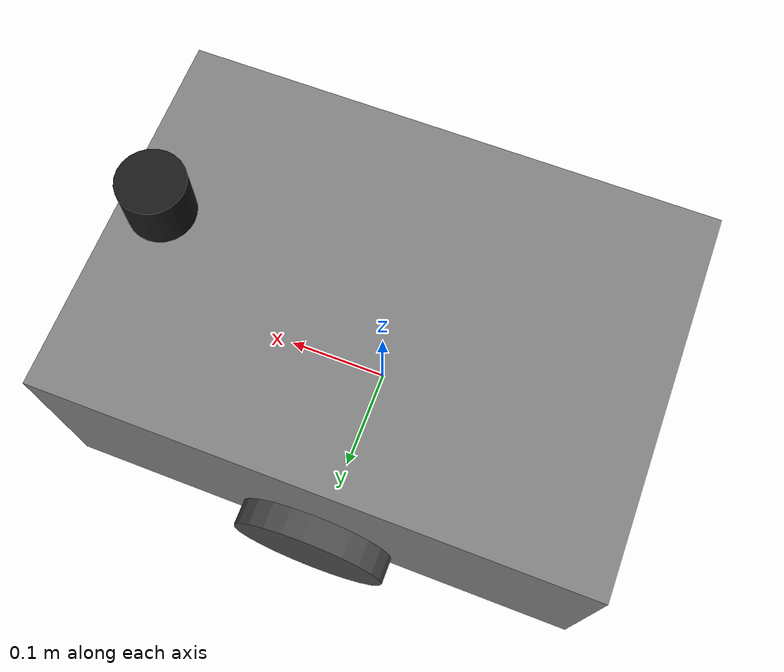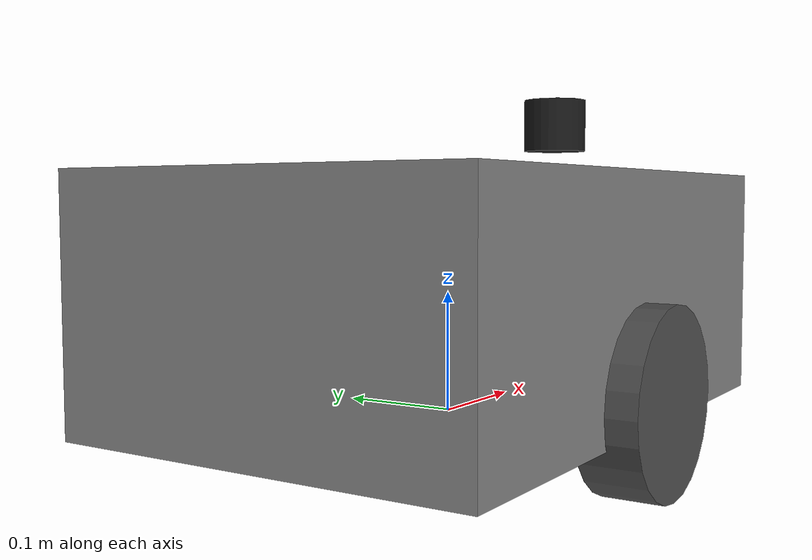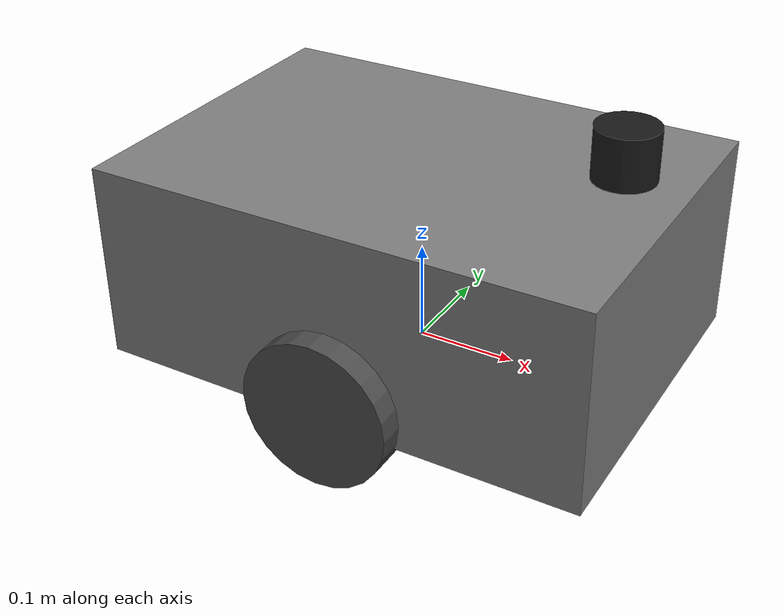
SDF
<?xml version="1.0"?>
<sdf version="1.6">
  <model name="tracked_robot">
    <static>false</static>

    <!-- 底盘连杆 -->
    <link name="base_link">
      <pose>0 0 0.1 0 0 0</pose>
      <inertial>
        <mass>10.0</mass>
        <inertia>
          <ixx>0.1</ixx>
          <ixy>0.0</ixy>
          <ixz>0.0</ixz>
          <iyy>0.1</iyy>
          <iyz>0.0</iyz>
          <izz>0.1</izz>
        </inertia>
      </inertial>
      <collision name="base_collision">
        <geometry>
          <box>
            <size>0.5 0.35 0.2</size>
          </box>
        </geometry>
      </collision>
      <visual name="base_visual">
        <geometry>
          <box>
            <size>0.5 0.35 0.2</size>
          </box>
        </geometry>
        <material>
          <ambient>0.5 0.5 0.5 1.0</ambient>
          <diffuse>0.5 0.5 0.5 1.0</diffuse>
        </material>
      </visual>
    </link>

    <!-- MID360 安装支架连杆 -->
    <link name="livox_link">
      <pose>0.2 0 0.25 0 0 0</pose>
      <inertial>
        <mass>0.1</mass>
        <inertia>
          <ixx>0.001</ixx>
          <ixy>0.0</ixy>
          <ixz>0.0</ixz>
          <iyy>0.001</iyy>
          <iyz>0.0</iyz>
          <izz>0.001</izz>
        </inertia>
      </inertial>
      <collision name="livox_collision">
        <geometry>
          <cylinder>
            <radius>0.03</radius>
            <length>0.05</length>
          </cylinder>
        </geometry>
      </collision>
      <visual name="livox_visual">
        <geometry>
          <cylinder>
            <radius>0.03</radius>
            <length>0.05</length>
          </cylinder>
        </geometry>
        <material>
          <ambient>0.1 0.1 0.1 1.0</ambient>
          <diffuse>0.1 0.1 0.1 1.0</diffuse>
        </material>
      </visual>
      <!-- MID360 传感器插件 -->
      <sensor name="mid360_sensor" type="ray">
        <pose>0 0 0 0 0 0</pose>
        <visualize>true</visualize>
        <update_rate>10</update_rate>
        <plugin name="livox_laser_simulation" filename="liblivox_laser_simulation.so">
          <ros_topic>/livox/lidar</ros_topic>
          <frameName>livox_frame</frameName>
          <csv_file_name>mid360.csv</csv_file_name>
        </plugin>
        <ray>
          <scan>
            <horizontal>
              <samples>100</samples>
              <resolution>1</resolution>
              <min_angle>-3.14159</min_angle>
              <max_angle>3.14159</max_angle>
            </horizontal>
            <vertical>
              <samples>50</samples>
              <resolution>1</resolution>
              <min_angle>-0.785</min_angle>
              <max_angle>0.785</max_angle>
            </vertical>
          </scan>
          <range>
            <min>0.1</min>
            <max>100.0</max>
            <resolution>0.01</resolution>
          </range>
        </ray>
      </sensor>
    </link>

    <!-- IMU 连杆 -->
    <link name="imu_link">
      <pose>0 0 0.15 0 0 0</pose>
      <inertial>
        <mass>0.05</mass>
        <inertia>
          <ixx>0.0001</ixx>
          <ixy>0.0</ixy>
          <ixz>0.0</ixz>
          <iyy>0.0001</iyy>
          <iyz>0.0</iyz>
          <izz>0.0001</izz>
        </inertia>
      </inertial>
      <sensor name="imu_sensor" type="imu">
        <plugin name="imu_plugin" filename="libgazebo_ros_imu_sensor.so">
          <ros>
            <namespace>/</namespace>
            <remapping>~/out:=/imu/data</remapping>
          </ros>
          <frame_name>imu_link</frame_name>
          <initial_orientation_as_reference>false</initial_orientation_as_reference>
        </plugin>
        <always_on>true</always_on>
        <update_rate>100</update_rate>
        <visualize>true</visualize>
        <imu>
          <angular_velocity_x>
            <noise type="gaussian">
              <mean>0.0</mean>
              <stddev>0.01</stddev>
            </noise>
          </angular_velocity_x>
          <angular_velocity_y>
            <noise type="gaussian">
              <mean>0.0</mean>
              <stddev>0.01</stddev>
            </noise>
          </angular_velocity_y>
          <angular_velocity_z>
            <noise type="gaussian">
              <mean>0.0</mean>
              <stddev>0.01</stddev>
            </noise>
          </angular_velocity_z>
          <linear_acceleration_x>
            <noise type="gaussian">
              <mean>0.0</mean>
              <stddev>0.1</stddev>
            </noise>
          </linear_acceleration_x>
          <linear_acceleration_y>
            <noise type="gaussian">
              <mean>0.0</mean>
              <stddev>0.1</stddev>
            </noise>
          </linear_acceleration_y>
          <linear_acceleration_z>
            <noise type="gaussian">
              <mean>0.0</mean>
              <stddev>0.1</stddev>
            </noise>
          </linear_acceleration_z>
        </imu>
      </sensor>
    </link>

    <!-- 履带简化模型（左右驱动轮） -->
    <link name="left_track_link">
      <pose>0 0.175 0.025 1.5708 0 0</pose>
      <inertial>
        <mass>0.5</mass>
        <inertia>
          <ixx>0.001</ixx>
          <ixy>0.0</ixy>
          <ixz>0.0</ixz>
          <iyy>0.001</iyy>
          <iyz>0.0</iyz>
          <izz>0.001</izz>
        </inertia>
      </inertial>
      <collision name="left_track_collision">
        <geometry>
          <cylinder>
            <radius>0.075</radius>
            <length>0.05</length>
          </cylinder>
        </geometry>
      </collision>
      <visual name="left_track_visual">
        <geometry>
          <cylinder>
            <radius>0.075</radius>
            <length>0.05</length>
          </cylinder>
        </geometry>
        <material>
          <ambient>0.3 0.3 0.3 1.0</ambient>
          <diffuse>0.3 0.3 0.3 1.0</diffuse>
        </material>
      </visual>
    </link>

    <link name="right_track_link">
      <pose>0 -0.175 0.025 1.5708 0 0</pose>
      <inertial>
        <mass>0.5</mass>
        <inertia>
          <ixx>0.001</ixx>
          <ixy>0.0</ixy>
          <ixz>0.0</ixz>
          <iyy>0.001</iyy>
          <iyz>0.0</iyz>
          <izz>0.001</izz>
        </inertia>
      </inertial>
      <collision name="right_track_collision">
        <geometry>
          <cylinder>
            <radius>0.075</radius>
            <length>0.05</length>
          </cylinder>
        </geometry>
      </collision>
      <visual name="right_track_visual">
        <geometry>
          <cylinder>
            <radius>0.075</radius>
            <length>0.05</length>
          </cylinder>
        </geometry>
        <material>
          <ambient>0.3 0.3 0.3 1.0</ambient>
          <diffuse>0.3 0.3 0.3 1.0</diffuse>
        </material>
      </visual>
    </link>

    <!-- 关节定义 -->
    <joint name="livox_joint" type="fixed">
      <parent>base_link</parent>
      <child>livox_link</child>
      <pose>0.2 0 0.15 0 0 0</pose>
    </joint>

    <joint name="imu_joint" type="fixed">
      <parent>base_link</parent>
      <child>imu_link</child>
      <pose>0 0 0.05 0 0 0</pose>
    </joint>

    <joint name="left_track_joint" type="revolute">
      <parent>base_link</parent>
      <child>left_track_link</child>
      <pose>0 0.175 -0.05 1.5708 0 0</pose>
      <axis>
        <xyz>0 0 1</xyz>
        <limit>
          <lower>-1e16</lower>
          <upper>1e16</upper>
        </limit>
        <dynamics>
          <damping>0.001</damping>
        </dynamics>
      </axis>
    </joint>

    <joint name="right_track_joint" type="revolute">
      <parent>base_link</parent>
      <child>right_track_link</child>
      <pose>0 -0.175 -0.05 1.5708 0 0</pose>
      <axis>
        <xyz>0 0 1</xyz>
        <limit>
          <lower>-1e16</lower>
          <upper>1e16</upper>
        </limit>
        <dynamics>
          <damping>0.001</damping>
        </dynamics>
      </axis>
    </joint>

    <!-- 惰轮（支撑轮） -->
    <link name="caster_wheel">
      <pose>0.2 0 -0.02 0 0 0</pose>
      <inertial>
        <mass>0.05</mass>
        <inertia>
          <ixx>0.0001</ixx>
          <ixy>0.0</ixy>
          <ixz>0.0</ixz>
          <iyy>0.0001</iyy>
          <iyz>0.0</iyz>
          <izz>0.0001</izz>
        </inertia>
      </inertial>
      <collision name="caster_collision">
        <geometry>
          <sphere>
            <radius>0.03</radius>
          </sphere>
        </geometry>
        <surface>
          <friction>
            <ode>
              <mu>0.1</mu>
              <mu2>0.1</mu2>
            </ode>
          </friction>
        </surface>
      </collision>
      <visual name="caster_visual">
        <geometry>
          <sphere>
            <radius>0.03</radius>
          </sphere>
        </geometry>
        <material>
          <ambient>0.2 0.2 0.2 1.0</ambient>
          <diffuse>0.2 0.2 0.2 1.0</diffuse>
        </material>
      </visual>
    </link>

    <joint name="caster_joint" type="fixed">
      <parent>base_link</parent>
      <child>caster_wheel</child>
      <pose>0.2 0 -0.1 0 0 0</pose>
    </joint>

    <!-- 差速驱动插件（履带近似） -->
    <plugin name="diff_drive_controller" filename="libgazebo_ros_diff_drive.so">
      <ros>
        <namespace>/</namespace>
        <remapping>cmd_vel:=cmd_vel</remapping>
        <remapping>odom:=odom</remapping>
      </ros>
      <left_joint>left_track_joint</left_joint>
      <right_joint>right_track_joint</right_joint>
      <wheel_separation>0.35</wheel_separation>
      <wheel_diameter>0.15</wheel_diameter>
      <max_wheel_torque>20</max_wheel_torque>
      <max_wheel_acceleration>1.0</max_wheel_acceleration>
      <odometry_source>1</odometry_source>
      <publish_odom>true</publish_odom>
      <publish_odom_tf>true</publish_odom_tf>
      <publish_wheel_tf>false</publish_wheel_tf>
      <update_rate>50.0</update_rate>
      <legacy_mode>false</legacy_mode>
    </plugin>

  </model>
</sdf>
